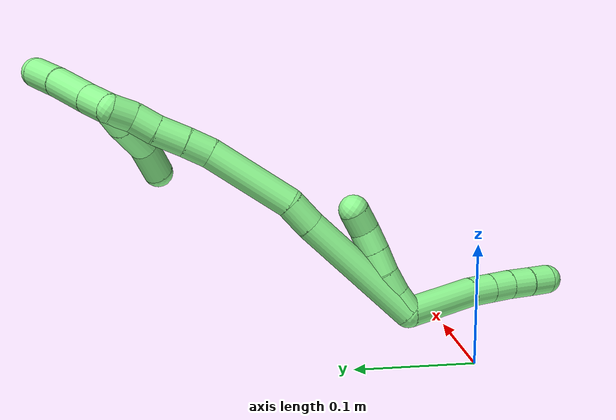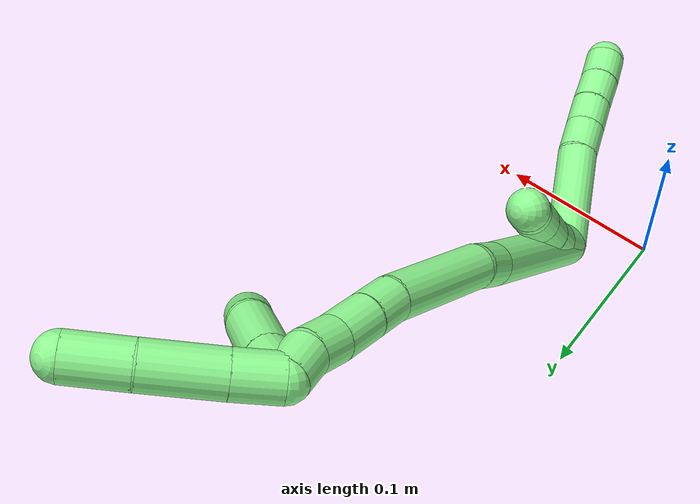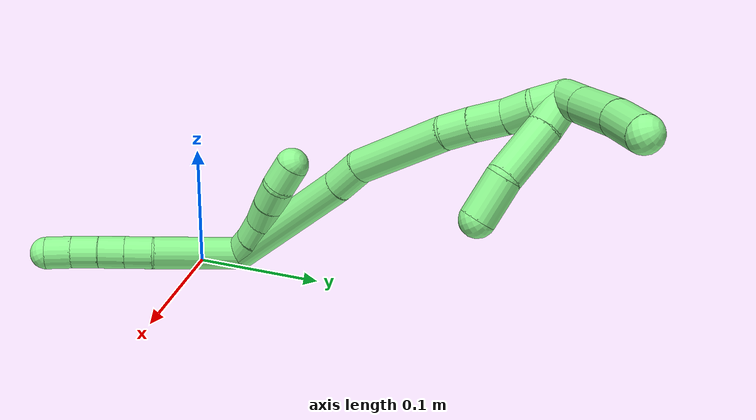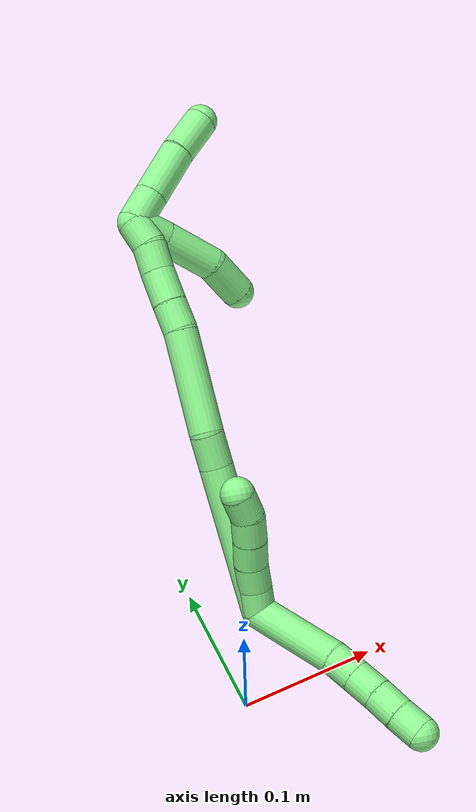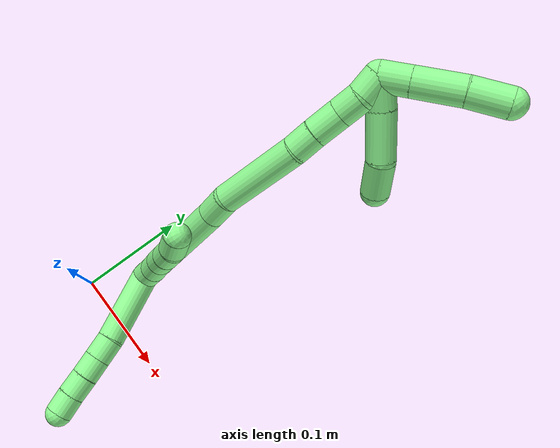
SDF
<sdf version="1.7">
 <world name="default">
  <model name="13">
   <static>0</static>
   <link name="13">
    <collision name="collision-cylinder-e_1_2_8">
     <pose>0.013562 -0.024073 -0.019495 2.25151 0.412661 0.827077</pose>
     <geometry><cylinder><radius>0.0125</radius><length>0.067631</length></cylinder></geometry>
     <surface>
      <friction><ode><mu>1.16</mu><mu2>1.16</mu2><slip1>0</slip1><slip2>0</slip2></ode></friction>
      <contact><ode><kp>1e+06</kp><kd>1</kd><max_vel>0</max_vel><min_depth>0.001</min_depth></ode></contact>
     </surface>
    </collision>
    <visual name="visual-cylinder-e_1_2_8">
     <pose>0.013562 -0.024073 -0.019495 2.25151 0.412661 0.827077</pose>
     <geometry><cylinder><radius>0.0125</radius><length>0.067631</length></cylinder></geometry>
     <material><ambient>0.564706 0.984314 0.572549 1</ambient></material>
    </visual>
    <collision name="collision-cylinder-e_2_8_9">
     <pose>0.030486 -0.055234 -0.046177 2.36312 0.321593 0.753148</pose>
     <geometry><cylinder><radius>0.0125</radius><length>0.021279</length></cylinder></geometry>
     <surface>
      <friction><ode><mu>1.16</mu><mu2>1.16</mu2><slip1>0</slip1><slip2>0</slip2></ode></friction>
      <contact><ode><kp>1e+06</kp><kd>1</kd><max_vel>0</max_vel><min_depth>0.001</min_depth></ode></contact>
     </surface>
    </collision>
    <visual name="visual-cylinder-e_2_8_9">
     <pose>0.030486 -0.055234 -0.046177 2.36312 0.321593 0.753148</pose>
     <geometry><cylinder><radius>0.0125</radius><length>0.021279</length></cylinder></geometry>
     <material><ambient>0.564706 0.984314 0.572549 1</ambient></material>
    </visual>
    <collision name="collision-cylinder-e_3_9_10">
     <pose>0.037009 -0.069066 -0.060148 2.35913 0.319044 0.743775</pose>
     <geometry><cylinder><radius>0.0125</radius><length>0.020151</length></cylinder></geometry>
     <surface>
      <friction><ode><mu>1.16</mu><mu2>1.16</mu2><slip1>0</slip1><slip2>0</slip2></ode></friction>
      <contact><ode><kp>1e+06</kp><kd>1</kd><max_vel>0</max_vel><min_depth>0.001</min_depth></ode></contact>
     </surface>
    </collision>
    <visual name="visual-cylinder-e_3_9_10">
     <pose>0.037009 -0.069066 -0.060148 2.35913 0.319044 0.743775</pose>
     <geometry><cylinder><radius>0.0125</radius><length>0.020151</length></cylinder></geometry>
     <material><ambient>0.564706 0.984314 0.572549 1</ambient></material>
    </visual>
    <collision name="collision-cylinder-e_4_10_11">
     <pose>0.043246 -0.082462 -0.074334 2.40949 0.299868 0.750816</pose>
     <geometry><cylinder><radius>0.0125</radius><length>0.020829</length></cylinder></geometry>
     <surface>
      <friction><ode><mu>1.16</mu><mu2>1.16</mu2><slip1>0</slip1><slip2>0</slip2></ode></friction>
      <contact><ode><kp>1e+06</kp><kd>1</kd><max_vel>0</max_vel><min_depth>0.001</min_depth></ode></contact>
     </surface>
    </collision>
    <visual name="visual-cylinder-e_4_10_11">
     <pose>0.043246 -0.082462 -0.074334 2.40949 0.299868 0.750816</pose>
     <geometry><cylinder><radius>0.0125</radius><length>0.020829</length></cylinder></geometry>
     <material><ambient>0.564706 0.984314 0.572549 1</ambient></material>
    </visual>
    <collision name="collision-cylinder-e_5_11_6">
     <pose>0.049739 -0.09552 -0.08869 2.39721 0.346664 0.843214</pose>
     <geometry><cylinder><radius>0.0125</radius><length>0.02011</length></cylinder></geometry>
     <surface>
      <friction><ode><mu>1.16</mu><mu2>1.16</mu2><slip1>0</slip1><slip2>0</slip2></ode></friction>
      <contact><ode><kp>1e+06</kp><kd>1</kd><max_vel>0</max_vel><min_depth>0.001</min_depth></ode></contact>
     </surface>
    </collision>
    <visual name="visual-cylinder-e_5_11_6">
     <pose>0.049739 -0.09552 -0.08869 2.39721 0.346664 0.843214</pose>
     <geometry><cylinder><radius>0.0125</radius><length>0.02011</length></cylinder></geometry>
     <material><ambient>0.564706 0.984314 0.572549 1</ambient></material>
    </visual>
    <collision name="collision-cylinder-e_1_2_12">
     <pose>-0.001426 -0.003084 0.009405 0.316833 -0.143042 -0.02289</pose>
     <geometry><cylinder><radius>0.0125</radius><length>0.02</length></cylinder></geometry>
     <surface>
      <friction><ode><mu>1.16</mu><mu2>1.16</mu2><slip1>0</slip1><slip2>0</slip2></ode></friction>
      <contact><ode><kp>1e+06</kp><kd>1</kd><max_vel>0</max_vel><min_depth>0.001</min_depth></ode></contact>
     </surface>
    </collision>
    <visual name="visual-cylinder-e_1_2_12">
     <pose>-0.001426 -0.003084 0.009405 0.316833 -0.143042 -0.02289</pose>
     <geometry><cylinder><radius>0.0125</radius><length>0.02</length></cylinder></geometry>
     <material><ambient>0.564706 0.984314 0.572549 1</ambient></material>
    </visual>
    <collision name="collision-cylinder-e_2_12_13">
     <pose>-0.004966 -0.01021 0.027709 0.426434 -0.213058 -0.046296</pose>
     <geometry><cylinder><radius>0.0125</radius><length>0.02</length></cylinder></geometry>
     <surface>
      <friction><ode><mu>1.16</mu><mu2>1.16</mu2><slip1>0</slip1><slip2>0</slip2></ode></friction>
      <contact><ode><kp>1e+06</kp><kd>1</kd><max_vel>0</max_vel><min_depth>0.001</min_depth></ode></contact>
     </surface>
    </collision>
    <visual name="visual-cylinder-e_2_12_13">
     <pose>-0.004966 -0.01021 0.027709 0.426434 -0.213058 -0.046296</pose>
     <geometry><cylinder><radius>0.0125</radius><length>0.02</length></cylinder></geometry>
     <material><ambient>0.564706 0.984314 0.572549 1</ambient></material>
    </visual>
    <collision name="collision-cylinder-e_3_13_14">
     <pose>-0.008465 -0.019319 0.045117 0.536974 -0.138958 -0.038288</pose>
     <geometry><cylinder><radius>0.0125</radius><length>0.02</length></cylinder></geometry>
     <surface>
      <friction><ode><mu>1.16</mu><mu2>1.16</mu2><slip1>0</slip1><slip2>0</slip2></ode></friction>
      <contact><ode><kp>1e+06</kp><kd>1</kd><max_vel>0</max_vel><min_depth>0.001</min_depth></ode></contact>
     </surface>
    </collision>
    <visual name="visual-cylinder-e_3_13_14">
     <pose>-0.008465 -0.019319 0.045117 0.536974 -0.138958 -0.038288</pose>
     <geometry><cylinder><radius>0.0125</radius><length>0.02</length></cylinder></geometry>
     <material><ambient>0.564706 0.984314 0.572549 1</ambient></material>
    </visual>
    <collision name="collision-cylinder-e_4_14_15">
     <pose>-0.011581 -0.029018 0.062319 0.489705 -0.173964 -0.043571</pose>
     <geometry><cylinder><radius>0.0125</radius><length>0.02</length></cylinder></geometry>
     <surface>
      <friction><ode><mu>1.16</mu><mu2>1.16</mu2><slip1>0</slip1><slip2>0</slip2></ode></friction>
      <contact><ode><kp>1e+06</kp><kd>1</kd><max_vel>0</max_vel><min_depth>0.001</min_depth></ode></contact>
     </surface>
    </collision>
    <visual name="visual-cylinder-e_4_14_15">
     <pose>-0.011581 -0.029018 0.062319 0.489705 -0.173964 -0.043571</pose>
     <geometry><cylinder><radius>0.0125</radius><length>0.02</length></cylinder></geometry>
     <material><ambient>0.564706 0.984314 0.572549 1</ambient></material>
    </visual>
    <collision name="collision-cylinder-e_5_15_5">
     <pose>-0.017571 -0.037011 0.079411 0.380576 -0.4399 -0.086073</pose>
     <geometry><cylinder><radius>0.0125</radius><length>0.02</length></cylinder></geometry>
     <surface>
      <friction><ode><mu>1.16</mu><mu2>1.16</mu2><slip1>0</slip1><slip2>0</slip2></ode></friction>
      <contact><ode><kp>1e+06</kp><kd>1</kd><max_vel>0</max_vel><min_depth>0.001</min_depth></ode></contact>
     </surface>
    </collision>
    <visual name="visual-cylinder-e_5_15_5">
     <pose>-0.017571 -0.037011 0.079411 0.380576 -0.4399 -0.086073</pose>
     <geometry><cylinder><radius>0.0125</radius><length>0.02</length></cylinder></geometry>
     <material><ambient>0.564706 0.984314 0.572549 1</ambient></material>
    </visual>
    <collision name="collision-cylinder-e_1_2_16">
     <pose>-0.009419 -0.005159 0.054962 0.093598 -0.169001 -0.007934</pose>
     <geometry><cylinder><radius>0.0125</radius><length>0.112002</length></cylinder></geometry>
     <surface>
      <friction><ode><mu>1.16</mu><mu2>1.16</mu2><slip1>0</slip1><slip2>0</slip2></ode></friction>
      <contact><ode><kp>1e+06</kp><kd>1</kd><max_vel>0</max_vel><min_depth>0.001</min_depth></ode></contact>
     </surface>
    </collision>
    <visual name="visual-cylinder-e_1_2_16">
     <pose>-0.009419 -0.005159 0.054962 0.093598 -0.169001 -0.007934</pose>
     <geometry><cylinder><radius>0.0125</radius><length>0.112002</length></cylinder></geometry>
     <material><ambient>0.564706 0.984314 0.572549 1</ambient></material>
    </visual>
    <collision name="collision-cylinder-e_2_16_17">
     <pose>-0.021424 -0.012437 0.121963 0.174187 -0.208402 -0.018262</pose>
     <geometry><cylinder><radius>0.0125</radius><length>0.024991</length></cylinder></geometry>
     <surface>
      <friction><ode><mu>1.16</mu><mu2>1.16</mu2><slip1>0</slip1><slip2>0</slip2></ode></friction>
      <contact><ode><kp>1e+06</kp><kd>1</kd><max_vel>0</max_vel><min_depth>0.001</min_depth></ode></contact>
     </surface>
    </collision>
    <visual name="visual-cylinder-e_2_16_17">
     <pose>-0.021424 -0.012437 0.121963 0.174187 -0.208402 -0.018262</pose>
     <geometry><cylinder><radius>0.0125</radius><length>0.024991</length></cylinder></geometry>
     <material><ambient>0.564706 0.984314 0.572549 1</ambient></material>
    </visual>
    <collision name="collision-cylinder-e_3_17_18">
     <pose>-0.025816 -0.012356 0.171657 -0.058368 -0.047876 0.001398</pose>
     <geometry><cylinder><radius>0.0125</radius><length>0.075523</length></cylinder></geometry>
     <surface>
      <friction><ode><mu>1.16</mu><mu2>1.16</mu2><slip1>0</slip1><slip2>0</slip2></ode></friction>
      <contact><ode><kp>1e+06</kp><kd>1</kd><max_vel>0</max_vel><min_depth>0.001</min_depth></ode></contact>
     </surface>
    </collision>
    <visual name="visual-cylinder-e_3_17_18">
     <pose>-0.025816 -0.012356 0.171657 -0.058368 -0.047876 0.001398</pose>
     <geometry><cylinder><radius>0.0125</radius><length>0.075523</length></cylinder></geometry>
     <material><ambient>0.564706 0.984314 0.572549 1</ambient></material>
    </visual>
    <collision name="collision-cylinder-e_4_18_19">
     <pose>-0.028888 -0.007971 0.219707 -0.207099 -0.118485 0.012327</pose>
     <geometry><cylinder><radius>0.0125</radius><length>0.021396</length></cylinder></geometry>
     <surface>
      <friction><ode><mu>1.16</mu><mu2>1.16</mu2><slip1>0</slip1><slip2>0</slip2></ode></friction>
      <contact><ode><kp>1e+06</kp><kd>1</kd><max_vel>0</max_vel><min_depth>0.001</min_depth></ode></contact>
     </surface>
    </collision>
    <visual name="visual-cylinder-e_4_18_19">
     <pose>-0.028888 -0.007971 0.219707 -0.207099 -0.118485 0.012327</pose>
     <geometry><cylinder><radius>0.0125</radius><length>0.021396</length></cylinder></geometry>
     <material><ambient>0.564706 0.984314 0.572549 1</ambient></material>
    </visual>
    <collision name="collision-cylinder-e_5_19_20">
     <pose>-0.03114 -0.002764 0.242328 -0.242406 -0.07825 0.009536</pose>
     <geometry><cylinder><radius>0.0125</radius><length>0.025264</length></cylinder></geometry>
     <surface>
      <friction><ode><mu>1.16</mu><mu2>1.16</mu2><slip1>0</slip1><slip2>0</slip2></ode></friction>
      <contact><ode><kp>1e+06</kp><kd>1</kd><max_vel>0</max_vel><min_depth>0.001</min_depth></ode></contact>
     </surface>
    </collision>
    <visual name="visual-cylinder-e_5_19_20">
     <pose>-0.03114 -0.002764 0.242328 -0.242406 -0.07825 0.009536</pose>
     <geometry><cylinder><radius>0.0125</radius><length>0.025264</length></cylinder></geometry>
     <material><ambient>0.564706 0.984314 0.572549 1</ambient></material>
    </visual>
    <collision name="collision-cylinder-e_6_20_21">
     <pose>-0.033048 0.001387 0.26475 -0.110164 -0.089522 0.004939</pose>
     <geometry><cylinder><radius>0.0125</radius><length>0.0206</length></cylinder></geometry>
     <surface>
      <friction><ode><mu>1.16</mu><mu2>1.16</mu2><slip1>0</slip1><slip2>0</slip2></ode></friction>
      <contact><ode><kp>1e+06</kp><kd>1</kd><max_vel>0</max_vel><min_depth>0.001</min_depth></ode></contact>
     </surface>
    </collision>
    <visual name="visual-cylinder-e_6_20_21">
     <pose>-0.033048 0.001387 0.26475 -0.110164 -0.089522 0.004939</pose>
     <geometry><cylinder><radius>0.0125</radius><length>0.0206</length></cylinder></geometry>
     <material><ambient>0.564706 0.984314 0.572549 1</ambient></material>
    </visual>
    <collision name="collision-cylinder-e_7_21_1">
     <pose>-0.036751 0.005687 0.284136 -0.332418 -0.278733 0.047056</pose>
     <geometry><cylinder><radius>0.0125</radius><length>0.020224</length></cylinder></geometry>
     <surface>
      <friction><ode><mu>1.16</mu><mu2>1.16</mu2><slip1>0</slip1><slip2>0</slip2></ode></friction>
      <contact><ode><kp>1e+06</kp><kd>1</kd><max_vel>0</max_vel><min_depth>0.001</min_depth></ode></contact>
     </surface>
    </collision>
    <visual name="visual-cylinder-e_7_21_1">
     <pose>-0.036751 0.005687 0.284136 -0.332418 -0.278733 0.047056</pose>
     <geometry><cylinder><radius>0.0125</radius><length>0.020224</length></cylinder></geometry>
     <material><ambient>0.564706 0.984314 0.572549 1</ambient></material>
    </visual>
    <collision name="collision-cylinder-e_1_1_22">
     <pose>-0.028225 0.009602 0.287096 -3.02289 1.06427 -2.94043</pose>
     <geometry><cylinder><radius>0.0125</radius><length>0.025864</length></cylinder></geometry>
     <surface>
      <friction><ode><mu>1.16</mu><mu2>1.16</mu2><slip1>0</slip1><slip2>0</slip2></ode></friction>
      <contact><ode><kp>1e+06</kp><kd>1</kd><max_vel>0</max_vel><min_depth>0.001</min_depth></ode></contact>
     </surface>
    </collision>
    <visual name="visual-cylinder-e_1_1_22">
     <pose>-0.028225 0.009602 0.287096 -3.02289 1.06427 -2.94043</pose>
     <geometry><cylinder><radius>0.0125</radius><length>0.025864</length></cylinder></geometry>
     <material><ambient>0.564706 0.984314 0.572549 1</ambient></material>
    </visual>
    <collision name="collision-cylinder-e_2_22_23">
     <pose>0.000687 0.010337 0.269337 3.14082 0.990977 3.14017</pose>
     <geometry><cylinder><radius>0.0125</radius><length>0.042088</length></cylinder></geometry>
     <surface>
      <friction><ode><mu>1.16</mu><mu2>1.16</mu2><slip1>0</slip1><slip2>0</slip2></ode></friction>
      <contact><ode><kp>1e+06</kp><kd>1</kd><max_vel>0</max_vel><min_depth>0.001</min_depth></ode></contact>
     </surface>
    </collision>
    <visual name="visual-cylinder-e_2_22_23">
     <pose>0.000687 0.010337 0.269337 3.14082 0.990977 3.14017</pose>
     <geometry><cylinder><radius>0.0125</radius><length>0.042088</length></cylinder></geometry>
     <material><ambient>0.564706 0.984314 0.572549 1</ambient></material>
    </visual>
    <collision name="collision-cylinder-e_3_23_4">
     <pose>0.02932 0.014406 0.246921 -2.7832 0.759038 -2.28899</pose>
     <geometry><cylinder><radius>0.0125</radius><length>0.032048</length></cylinder></geometry>
     <surface>
      <friction><ode><mu>1.16</mu><mu2>1.16</mu2><slip1>0</slip1><slip2>0</slip2></ode></friction>
      <contact><ode><kp>1e+06</kp><kd>1</kd><max_vel>0</max_vel><min_depth>0.001</min_depth></ode></contact>
     </surface>
    </collision>
    <visual name="visual-cylinder-e_3_23_4">
     <pose>0.02932 0.014406 0.246921 -2.7832 0.759038 -2.28899</pose>
     <geometry><cylinder><radius>0.0125</radius><length>0.032048</length></cylinder></geometry>
     <material><ambient>0.564706 0.984314 0.572549 1</ambient></material>
    </visual>
    <collision name="collision-cylinder-e_1_1_24">
     <pose>-0.030948 0.009128 0.302695 -0.028654 0.741535 -0.01114</pose>
     <geometry><cylinder><radius>0.0125</radius><length>0.025422</length></cylinder></geometry>
     <surface>
      <friction><ode><mu>1.16</mu><mu2>1.16</mu2><slip1>0</slip1><slip2>0</slip2></ode></friction>
      <contact><ode><kp>1e+06</kp><kd>1</kd><max_vel>0</max_vel><min_depth>0.001</min_depth></ode></contact>
     </surface>
    </collision>
    <visual name="visual-cylinder-e_1_1_24">
     <pose>-0.030948 0.009128 0.302695 -0.028654 0.741535 -0.01114</pose>
     <geometry><cylinder><radius>0.0125</radius><length>0.025422</length></cylinder></geometry>
     <material><ambient>0.564706 0.984314 0.572549 1</ambient></material>
    </visual>
    <collision name="collision-cylinder-e_2_24_25">
     <pose>-0.008394 0.009219 0.327398 0.011562 0.738839 0.004477</pose>
     <geometry><cylinder><radius>0.0125</radius><length>0.041487</length></cylinder></geometry>
     <surface>
      <friction><ode><mu>1.16</mu><mu2>1.16</mu2><slip1>0</slip1><slip2>0</slip2></ode></friction>
      <contact><ode><kp>1e+06</kp><kd>1</kd><max_vel>0</max_vel><min_depth>0.001</min_depth></ode></contact>
     </surface>
    </collision>
    <visual name="visual-cylinder-e_2_24_25">
     <pose>-0.008394 0.009219 0.327398 0.011562 0.738839 0.004477</pose>
     <geometry><cylinder><radius>0.0125</radius><length>0.041487</length></cylinder></geometry>
     <material><ambient>0.564706 0.984314 0.572549 1</ambient></material>
    </visual>
    <collision name="collision-cylinder-e_3_25_3">
     <pose>0.017761 0.009362 0.353919 -0.028555 0.827913 -0.012546</pose>
     <geometry><cylinder><radius>0.0125</radius><length>0.033091</length></cylinder></geometry>
     <surface>
      <friction><ode><mu>1.16</mu><mu2>1.16</mu2><slip1>0</slip1><slip2>0</slip2></ode></friction>
      <contact><ode><kp>1e+06</kp><kd>1</kd><max_vel>0</max_vel><min_depth>0.001</min_depth></ode></contact>
     </surface>
    </collision>
    <visual name="visual-cylinder-e_3_25_3">
     <pose>0.017761 0.009362 0.353919 -0.028555 0.827913 -0.012546</pose>
     <geometry><cylinder><radius>0.0125</radius><length>0.033091</length></cylinder></geometry>
     <material><ambient>0.564706 0.984314 0.572549 1</ambient></material>
    </visual>
    <collision name="collision-sphere-3">
     <pose>0.029948 0.009681 0.365106 0 -0 0</pose>
     <geometry><sphere><radius>0.0125</radius></sphere></geometry>
     <surface>
      <friction><ode><mu>1.16</mu><mu2>1.16</mu2><slip1>0</slip1><slip2>0</slip2></ode></friction>
      <contact><ode><kp>1e+06</kp><kd>1</kd><max_vel>0</max_vel><min_depth>0.001</min_depth></ode></contact>
     </surface>
    </collision>
    <visual name="visual-sphere-3">
     <pose>0.029948 0.009681 0.365106 0 -0 0</pose>
     <geometry><sphere><radius>0.0125</radius></sphere></geometry>
     <material><ambient>0.564706 0.984314 0.572549 1</ambient></material>
    </visual>
    <collision name="collision-sphere-25">
     <pose>0.005575 0.009042 0.342732 0 -0 0</pose>
     <geometry><sphere><radius>0.0125</radius></sphere></geometry>
     <surface>
      <friction><ode><mu>1.16</mu><mu2>1.16</mu2><slip1>0</slip1><slip2>0</slip2></ode></friction>
      <contact><ode><kp>1e+06</kp><kd>1</kd><max_vel>0</max_vel><min_depth>0.001</min_depth></ode></contact>
     </surface>
    </collision>
    <visual name="visual-sphere-25">
     <pose>0.005575 0.009042 0.342732 0 -0 0</pose>
     <geometry><sphere><radius>0.0125</radius></sphere></geometry>
     <material><ambient>0.564706 0.984314 0.572549 1</ambient></material>
    </visual>
    <collision name="collision-sphere-24">
     <pose>-0.022363 0.009397 0.312065 0 -0 0</pose>
     <geometry><sphere><radius>0.0125</radius></sphere></geometry>
     <surface>
      <friction><ode><mu>1.16</mu><mu2>1.16</mu2><slip1>0</slip1><slip2>0</slip2></ode></friction>
      <contact><ode><kp>1e+06</kp><kd>1</kd><max_vel>0</max_vel><min_depth>0.001</min_depth></ode></contact>
     </surface>
    </collision>
    <visual name="visual-sphere-24">
     <pose>-0.022363 0.009397 0.312065 0 -0 0</pose>
     <geometry><sphere><radius>0.0125</radius></sphere></geometry>
     <material><ambient>0.564706 0.984314 0.572549 1</ambient></material>
    </visual>
    <collision name="collision-sphere-4">
     <pose>0.040348 0.018483 0.236034 0 -0 0</pose>
     <geometry><sphere><radius>0.0125</radius></sphere></geometry>
     <surface>
      <friction><ode><mu>1.16</mu><mu2>1.16</mu2><slip1>0</slip1><slip2>0</slip2></ode></friction>
      <contact><ode><kp>1e+06</kp><kd>1</kd><max_vel>0</max_vel><min_depth>0.001</min_depth></ode></contact>
     </surface>
    </collision>
    <visual name="visual-sphere-4">
     <pose>0.040348 0.018483 0.236034 0 -0 0</pose>
     <geometry><sphere><radius>0.0125</radius></sphere></geometry>
     <material><ambient>0.564706 0.984314 0.572549 1</ambient></material>
    </visual>
    <collision name="collision-sphere-23">
     <pose>0.018292 0.010328 0.257807 0 -0 0</pose>
     <geometry><sphere><radius>0.0125</radius></sphere></geometry>
     <surface>
      <friction><ode><mu>1.16</mu><mu2>1.16</mu2><slip1>0</slip1><slip2>0</slip2></ode></friction>
      <contact><ode><kp>1e+06</kp><kd>1</kd><max_vel>0</max_vel><min_depth>0.001</min_depth></ode></contact>
     </surface>
    </collision>
    <visual name="visual-sphere-23">
     <pose>0.018292 0.010328 0.257807 0 -0 0</pose>
     <geometry><sphere><radius>0.0125</radius></sphere></geometry>
     <material><ambient>0.564706 0.984314 0.572549 1</ambient></material>
    </visual>
    <collision name="collision-sphere-22">
     <pose>-0.016917 0.010345 0.280866 0 -0 0</pose>
     <geometry><sphere><radius>0.0125</radius></sphere></geometry>
     <surface>
      <friction><ode><mu>1.16</mu><mu2>1.16</mu2><slip1>0</slip1><slip2>0</slip2></ode></friction>
      <contact><ode><kp>1e+06</kp><kd>1</kd><max_vel>0</max_vel><min_depth>0.001</min_depth></ode></contact>
     </surface>
    </collision>
    <visual name="visual-sphere-22">
     <pose>-0.016917 0.010345 0.280866 0 -0 0</pose>
     <geometry><sphere><radius>0.0125</radius></sphere></geometry>
     <material><ambient>0.564706 0.984314 0.572549 1</ambient></material>
    </visual>
    <collision name="collision-sphere-1">
     <pose>-0.039534 0.008859 0.293326 0 -0 0</pose>
     <geometry><sphere><radius>0.0125</radius></sphere></geometry>
     <surface>
      <friction><ode><mu>1.16</mu><mu2>1.16</mu2><slip1>0</slip1><slip2>0</slip2></ode></friction>
      <contact><ode><kp>1e+06</kp><kd>1</kd><max_vel>0</max_vel><min_depth>0.001</min_depth></ode></contact>
     </surface>
    </collision>
    <visual name="visual-sphere-1">
     <pose>-0.039534 0.008859 0.293326 0 -0 0</pose>
     <geometry><sphere><radius>0.0125</radius></sphere></geometry>
     <material><ambient>0.564706 0.984314 0.572549 1</ambient></material>
    </visual>
    <collision name="collision-sphere-21">
     <pose>-0.033969 0.002514 0.274947 0 -0 0</pose>
     <geometry><sphere><radius>0.0125</radius></sphere></geometry>
     <surface>
      <friction><ode><mu>1.16</mu><mu2>1.16</mu2><slip1>0</slip1><slip2>0</slip2></ode></friction>
      <contact><ode><kp>1e+06</kp><kd>1</kd><max_vel>0</max_vel><min_depth>0.001</min_depth></ode></contact>
     </surface>
    </collision>
    <visual name="visual-sphere-21">
     <pose>-0.033969 0.002514 0.274947 0 -0 0</pose>
     <geometry><sphere><radius>0.0125</radius></sphere></geometry>
     <material><ambient>0.564706 0.984314 0.572549 1</ambient></material>
    </visual>
    <collision name="collision-sphere-6">
     <pose>0.053155 -0.101928 -0.095645 0 -0 0</pose>
     <geometry><sphere><radius>0.0125</radius></sphere></geometry>
     <surface>
      <friction><ode><mu>1.16</mu><mu2>1.16</mu2><slip1>0</slip1><slip2>0</slip2></ode></friction>
      <contact><ode><kp>1e+06</kp><kd>1</kd><max_vel>0</max_vel><min_depth>0.001</min_depth></ode></contact>
     </surface>
    </collision>
    <visual name="visual-sphere-6">
     <pose>0.053155 -0.101928 -0.095645 0 -0 0</pose>
     <geometry><sphere><radius>0.0125</radius></sphere></geometry>
     <material><ambient>0.564706 0.984314 0.572549 1</ambient></material>
    </visual>
    <collision name="collision-sphere-11">
     <pose>0.046322 -0.089113 -0.081734 0 -0 0</pose>
     <geometry><sphere><radius>0.0125</radius></sphere></geometry>
     <surface>
      <friction><ode><mu>1.16</mu><mu2>1.16</mu2><slip1>0</slip1><slip2>0</slip2></ode></friction>
      <contact><ode><kp>1e+06</kp><kd>1</kd><max_vel>0</max_vel><min_depth>0.001</min_depth></ode></contact>
     </surface>
    </collision>
    <visual name="visual-sphere-11">
     <pose>0.046322 -0.089113 -0.081734 0 -0 0</pose>
     <geometry><sphere><radius>0.0125</radius></sphere></geometry>
     <material><ambient>0.564706 0.984314 0.572549 1</ambient></material>
    </visual>
    <collision name="collision-sphere-10">
     <pose>0.040169 -0.075812 -0.066933 0 -0 0</pose>
     <geometry><sphere><radius>0.0125</radius></sphere></geometry>
     <surface>
      <friction><ode><mu>1.16</mu><mu2>1.16</mu2><slip1>0</slip1><slip2>0</slip2></ode></friction>
      <contact><ode><kp>1e+06</kp><kd>1</kd><max_vel>0</max_vel><min_depth>0.001</min_depth></ode></contact>
     </surface>
    </collision>
    <visual name="visual-sphere-10">
     <pose>0.040169 -0.075812 -0.066933 0 -0 0</pose>
     <geometry><sphere><radius>0.0125</radius></sphere></geometry>
     <material><ambient>0.564706 0.984314 0.572549 1</ambient></material>
    </visual>
    <collision name="collision-sphere-9">
     <pose>0.033849 -0.062321 -0.053364 0 -0 0</pose>
     <geometry><sphere><radius>0.0125</radius></sphere></geometry>
     <surface>
      <friction><ode><mu>1.16</mu><mu2>1.16</mu2><slip1>0</slip1><slip2>0</slip2></ode></friction>
      <contact><ode><kp>1e+06</kp><kd>1</kd><max_vel>0</max_vel><min_depth>0.001</min_depth></ode></contact>
     </surface>
    </collision>
    <visual name="visual-sphere-9">
     <pose>0.033849 -0.062321 -0.053364 0 -0 0</pose>
     <geometry><sphere><radius>0.0125</radius></sphere></geometry>
     <material><ambient>0.564706 0.984314 0.572549 1</ambient></material>
    </visual>
    <collision name="collision-sphere-2">
     <geometry><sphere><radius>0.0125</radius></sphere></geometry>
     <surface>
      <friction><ode><mu>1.16</mu><mu2>1.16</mu2><slip1>0</slip1><slip2>0</slip2></ode></friction>
      <contact><ode><kp>1e+06</kp><kd>1</kd><max_vel>0</max_vel><min_depth>0.001</min_depth></ode></contact>
     </surface>
    </collision>
    <visual name="visual-sphere-2">
     <geometry><sphere><radius>0.0125</radius></sphere></geometry>
     <material><ambient>0.564706 0.984314 0.572549 1</ambient></material>
    </visual>
    <collision name="collision-sphere-19">
     <pose>-0.030153 -0.005787 0.230103 0 -0 0</pose>
     <geometry><sphere><radius>0.0125</radius></sphere></geometry>
     <surface>
      <friction><ode><mu>1.16</mu><mu2>1.16</mu2><slip1>0</slip1><slip2>0</slip2></ode></friction>
      <contact><ode><kp>1e+06</kp><kd>1</kd><max_vel>0</max_vel><min_depth>0.001</min_depth></ode></contact>
     </surface>
    </collision>
    <visual name="visual-sphere-19">
     <pose>-0.030153 -0.005787 0.230103 0 -0 0</pose>
     <geometry><sphere><radius>0.0125</radius></sphere></geometry>
     <material><ambient>0.564706 0.984314 0.572549 1</ambient></material>
    </visual>
    <collision name="collision-sphere-8">
     <pose>0.027123 -0.048146 -0.03899 0 -0 0</pose>
     <geometry><sphere><radius>0.0125</radius></sphere></geometry>
     <surface>
      <friction><ode><mu>1.16</mu><mu2>1.16</mu2><slip1>0</slip1><slip2>0</slip2></ode></friction>
      <contact><ode><kp>1e+06</kp><kd>1</kd><max_vel>0</max_vel><min_depth>0.001</min_depth></ode></contact>
     </surface>
    </collision>
    <visual name="visual-sphere-8">
     <pose>0.027123 -0.048146 -0.03899 0 -0 0</pose>
     <geometry><sphere><radius>0.0125</radius></sphere></geometry>
     <material><ambient>0.564706 0.984314 0.572549 1</ambient></material>
    </visual>
    <collision name="collision-sphere-12">
     <pose>-0.002851 -0.006168 0.01881 0 -0 0</pose>
     <geometry><sphere><radius>0.0125</radius></sphere></geometry>
     <surface>
      <friction><ode><mu>1.16</mu><mu2>1.16</mu2><slip1>0</slip1><slip2>0</slip2></ode></friction>
      <contact><ode><kp>1e+06</kp><kd>1</kd><max_vel>0</max_vel><min_depth>0.001</min_depth></ode></contact>
     </surface>
    </collision>
    <visual name="visual-sphere-12">
     <pose>-0.002851 -0.006168 0.01881 0 -0 0</pose>
     <geometry><sphere><radius>0.0125</radius></sphere></geometry>
     <material><ambient>0.564706 0.984314 0.572549 1</ambient></material>
    </visual>
    <collision name="collision-sphere-13">
     <pose>-0.00708 -0.014253 0.036608 0 -0 0</pose>
     <geometry><sphere><radius>0.0125</radius></sphere></geometry>
     <surface>
      <friction><ode><mu>1.16</mu><mu2>1.16</mu2><slip1>0</slip1><slip2>0</slip2></ode></friction>
      <contact><ode><kp>1e+06</kp><kd>1</kd><max_vel>0</max_vel><min_depth>0.001</min_depth></ode></contact>
     </surface>
    </collision>
    <visual name="visual-sphere-13">
     <pose>-0.00708 -0.014253 0.036608 0 -0 0</pose>
     <geometry><sphere><radius>0.0125</radius></sphere></geometry>
     <material><ambient>0.564706 0.984314 0.572549 1</ambient></material>
    </visual>
    <collision name="collision-sphere-14">
     <pose>-0.00985 -0.024385 0.053627 0 -0 0</pose>
     <geometry><sphere><radius>0.0125</radius></sphere></geometry>
     <surface>
      <friction><ode><mu>1.16</mu><mu2>1.16</mu2><slip1>0</slip1><slip2>0</slip2></ode></friction>
      <contact><ode><kp>1e+06</kp><kd>1</kd><max_vel>0</max_vel><min_depth>0.001</min_depth></ode></contact>
     </surface>
    </collision>
    <visual name="visual-sphere-14">
     <pose>-0.00985 -0.024385 0.053627 0 -0 0</pose>
     <geometry><sphere><radius>0.0125</radius></sphere></geometry>
     <material><ambient>0.564706 0.984314 0.572549 1</ambient></material>
    </visual>
    <collision name="collision-sphere-15">
     <pose>-0.013312 -0.03365 0.07101 0 -0 0</pose>
     <geometry><sphere><radius>0.0125</radius></sphere></geometry>
     <surface>
      <friction><ode><mu>1.16</mu><mu2>1.16</mu2><slip1>0</slip1><slip2>0</slip2></ode></friction>
      <contact><ode><kp>1e+06</kp><kd>1</kd><max_vel>0</max_vel><min_depth>0.001</min_depth></ode></contact>
     </surface>
    </collision>
    <visual name="visual-sphere-15">
     <pose>-0.013312 -0.03365 0.07101 0 -0 0</pose>
     <geometry><sphere><radius>0.0125</radius></sphere></geometry>
     <material><ambient>0.564706 0.984314 0.572549 1</ambient></material>
    </visual>
    <collision name="collision-sphere-5">
     <pose>-0.021829 -0.040372 0.087811 0 -0 0</pose>
     <geometry><sphere><radius>0.0125</radius></sphere></geometry>
     <surface>
      <friction><ode><mu>1.16</mu><mu2>1.16</mu2><slip1>0</slip1><slip2>0</slip2></ode></friction>
      <contact><ode><kp>1e+06</kp><kd>1</kd><max_vel>0</max_vel><min_depth>0.001</min_depth></ode></contact>
     </surface>
    </collision>
    <visual name="visual-sphere-5">
     <pose>-0.021829 -0.040372 0.087811 0 -0 0</pose>
     <geometry><sphere><radius>0.0125</radius></sphere></geometry>
     <material><ambient>0.564706 0.984314 0.572549 1</ambient></material>
    </visual>
    <collision name="collision-sphere-16">
     <pose>-0.018839 -0.010319 0.109923 0 -0 0</pose>
     <geometry><sphere><radius>0.0125</radius></sphere></geometry>
     <surface>
      <friction><ode><mu>1.16</mu><mu2>1.16</mu2><slip1>0</slip1><slip2>0</slip2></ode></friction>
      <contact><ode><kp>1e+06</kp><kd>1</kd><max_vel>0</max_vel><min_depth>0.001</min_depth></ode></contact>
     </surface>
    </collision>
    <visual name="visual-sphere-16">
     <pose>-0.018839 -0.010319 0.109923 0 -0 0</pose>
     <geometry><sphere><radius>0.0125</radius></sphere></geometry>
     <material><ambient>0.564706 0.984314 0.572549 1</ambient></material>
    </visual>
    <collision name="collision-sphere-17">
     <pose>-0.024009 -0.014556 0.134004 0 -0 0</pose>
     <geometry><sphere><radius>0.0125</radius></sphere></geometry>
     <surface>
      <friction><ode><mu>1.16</mu><mu2>1.16</mu2><slip1>0</slip1><slip2>0</slip2></ode></friction>
      <contact><ode><kp>1e+06</kp><kd>1</kd><max_vel>0</max_vel><min_depth>0.001</min_depth></ode></contact>
     </surface>
    </collision>
    <visual name="visual-sphere-17">
     <pose>-0.024009 -0.014556 0.134004 0 -0 0</pose>
     <geometry><sphere><radius>0.0125</radius></sphere></geometry>
     <material><ambient>0.564706 0.984314 0.572549 1</ambient></material>
    </visual>
    <collision name="collision-sphere-18">
     <pose>-0.027623 -0.010156 0.209311 0 -0 0</pose>
     <geometry><sphere><radius>0.0125</radius></sphere></geometry>
     <surface>
      <friction><ode><mu>1.16</mu><mu2>1.16</mu2><slip1>0</slip1><slip2>0</slip2></ode></friction>
      <contact><ode><kp>1e+06</kp><kd>1</kd><max_vel>0</max_vel><min_depth>0.001</min_depth></ode></contact>
     </surface>
    </collision>
    <visual name="visual-sphere-18">
     <pose>-0.027623 -0.010156 0.209311 0 -0 0</pose>
     <geometry><sphere><radius>0.0125</radius></sphere></geometry>
     <material><ambient>0.564706 0.984314 0.572549 1</ambient></material>
    </visual>
    <collision name="collision-sphere-20">
     <pose>-0.032127 0.000259 0.254553 0 -0 0</pose>
     <geometry><sphere><radius>0.0125</radius></sphere></geometry>
     <surface>
      <friction><ode><mu>1.16</mu><mu2>1.16</mu2><slip1>0</slip1><slip2>0</slip2></ode></friction>
      <contact><ode><kp>1e+06</kp><kd>1</kd><max_vel>0</max_vel><min_depth>0.001</min_depth></ode></contact>
     </surface>
    </collision>
    <visual name="visual-sphere-20">
     <pose>-0.032127 0.000259 0.254553 0 -0 0</pose>
     <geometry><sphere><radius>0.0125</radius></sphere></geometry>
     <material><ambient>0.564706 0.984314 0.572549 1</ambient></material>
    </visual>
    <inertial>
     <pose>-0.00446 -0.012874 0.135319 0 -0 0</pose>
     <mass>0.75</mass>
     <inertia><ixx>0.00023</ixx><ixy>0</ixy><ixz>0</ixz><iyy>0.000205</iyy><iyz>0</iyz><izz>4.8e-05</izz></inertia>
    </inertial>
   </link>
   <pose>0.033472 0.048086 0.034832 -0.922308 0.321107 0.000937</pose>
  </model>
 </world>
</sdf>
